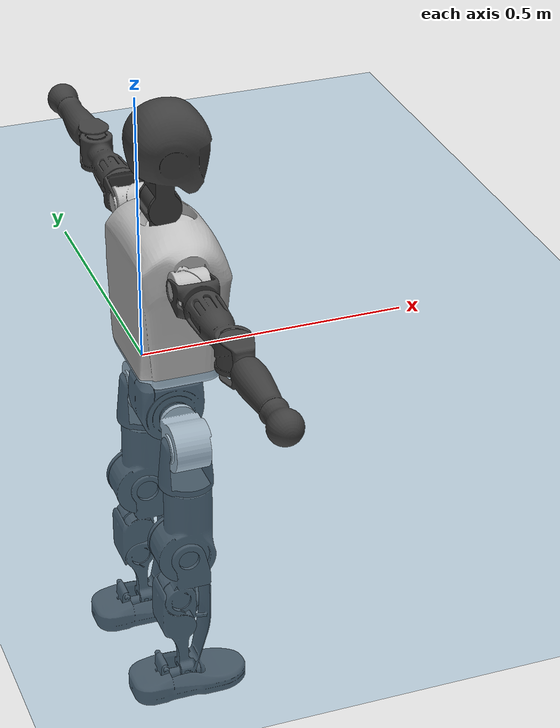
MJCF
<mujoco model="T1">
  <compiler angle="radian" assetdir="assets" balanceinertia="true" inertiafromgeom="false"/>

  <option timestep="0.005" density="1.2" viscosity="2e-05"/>

  <size nkey="1"/>

  <visual>
    <quality shadowsize="8192"/>
    <map shadowclip="0.5"/>
  </visual>

  <default>
    <default class="/">
      <joint armature="0.01" damping="0.01" frictionloss="0.1"/>
      <geom contype="0" conaffinity="0" group="1" solref="-1000 -80"/>
      <site size="0.01 0.005 0.005" group="5"/>
      <general forcelimited="true" biastype="affine" gainprm="25" biasprm="0 -25 -0.6"/>
      <default class="t1">
        <geom rgba="0.25 0.25 0.25 1"/>
        <default class="visual">
          <geom type="mesh" group="2"/>
        </default>
        <default class="collision">
          <geom group="3"/>
        </default>
        <default class="foot">
          <geom size="0.1115 0.05 0.015" type="box" condim="6" group="4" priority="1" solimp="0.015 1 0.015"/>
        </default>
        <default class="reward_collision_sphere">
          <geom group="5" rgba="1 0 0 1"/>
        </default>
      </default>
    </default>
  </default>

  <asset>
    <texture type="skybox" colorspace="auto" name="//unnamed_texture_0" builtin="gradient" rgb1="0.95 0.95 0.95" rgb2="0.95 0.95 0.95" width="100" height="600"/>
    <texture type="2d" colorspace="auto" name="texplane" builtin="checker" rgb1="0.345 0.575 0.748" rgb2="0.345 0.575 0.748" markrgb="1 1 1" width="512" height="512"/>
    <material name="MatPlane" class="/" texture="texplane" texuniform="true" texrepeat="2 2" specular="0.9"/>
    <mesh name="Trunk" class="/" file="Trunk.stl"/>
    <mesh name="H1" class="/" file="H1.stl"/>
    <mesh name="H2" class="/" file="H2.stl"/>
    <mesh name="AL1" class="/" file="AL1.stl"/>
    <mesh name="AL2" class="/" file="AL2.stl"/>
    <mesh name="AL3" class="/" file="AL3.stl"/>
    <mesh name="left_hand_link" class="/" file="left_hand_link.stl"/>
    <mesh name="AR1" class="/" file="AR1.stl"/>
    <mesh name="AR2" class="/" file="AR2.stl"/>
    <mesh name="AR3" class="/" file="AR3.stl"/>
    <mesh name="right_hand_link" class="/" file="right_hand_link.stl"/>
    <mesh name="Waist" class="/" file="Waist.stl"/>
    <mesh name="Hip_Pitch_Left" class="/" file="Hip_Pitch_Left.stl"/>
    <mesh name="Hip_Roll_Left" class="/" file="Hip_Roll_Left.stl"/>
    <mesh name="Hip_Yaw_Left" class="/" file="Hip_Yaw_Left.stl"/>
    <mesh name="Shank_Left" class="/" file="Shank_Left.stl"/>
    <mesh name="Ankle_Cross_Left" class="/" file="Ankle_Cross_Left.stl"/>
    <mesh name="left_foot_link" class="/" file="left_foot_link.stl"/>
    <mesh name="Hip_Pitch_Right" class="/" file="Hip_Pitch_Right.stl"/>
    <mesh name="Hip_Roll_Right" class="/" file="Hip_Roll_Right.stl"/>
    <mesh name="Hip_Yaw_Right" class="/" file="Hip_Yaw_Right.stl"/>
    <mesh name="Shank_Right" class="/" file="Shank_Right.stl"/>
    <mesh name="Ankle_Cross_Right" class="/" file="Ankle_Cross_Right.stl"/>
    <mesh name="right_foot_link" class="/" file="right_foot_link.stl"/>
  </asset>

  <worldbody>
    <geom name="floor" class="/" size="100 100 0.125" type="plane" group="0" material="MatPlane"/>
    <light name="toplight_shadow" class="/" pos="0 0 5" dir="0.0990148 0.0990148 -0.990148" type="directional" ambient="0.04 0.04 0.04" diffuse="0.55 0.55 0.55" specular="0.12 0.12 0.12"/>
    <light name="toplight_fill" class="/" pos="0 0 5" dir="0.0990148 0.0990148 -0.990148" type="directional" castshadow="false" ambient="0.04 0.04 0.04" diffuse="0.3 0.3 0.3" specular="0.08 0.08 0.08"/>
    <body name="trunk" childclass="t1" pos="-0.00169309 0.00167437 0.00081014" quat="1 -0.000112824 -9.80844e-06 0.000191171">
      <inertial pos="0.0385973 -0.00267973 0.105855" quat="0.999979 0.00639127 0.00116972 -0.000728394" mass="10.4269" diaginertia="0.0172064 0.134609 0.0553973"/>
      <joint name="//unnamed_joint_0" type="free" armature="0" damping="0" frictionloss="0"/>
      <geom name="//unnamed_geom_1" class="visual" rgba="0.76 0.76 0.76 1" mesh="Trunk"/>
      <geom name="//unnamed_geom_2" class="collision" size="0.0707679 0.0943573 0.141536" pos="0.0427708 0 0.119212" type="box"/>
      <geom name="//unnamed_geom_3" class="reward_collision_sphere" size="0.108511" pos="0.0427708 0 0.099343"/>
      <geom name="//unnamed_geom_4" class="reward_collision_sphere" size="0.0141536" pos="0.0427708 0.0955775 0"/>
      <geom name="//unnamed_geom_5" class="reward_collision_sphere" size="0.0141536" pos="0.0427708 -0.0955775 0"/>
      <geom name="//unnamed_geom_6" class="reward_collision_sphere" size="0.0141536" pos="0.0427708 0.120315 0.178817"/>
      <geom name="//unnamed_geom_7" class="reward_collision_sphere" size="0.0141536" pos="0.0427708 -0.120315 0.178817"/>
      <site name="imu" pos="-1.54946e-05 0.0147579 0.00323759" size="0.00943573"/>
      <camera name="track" pos="0 -2.24888 0" quat="0.707107 0.707107 0 0" mode="trackcom"/>
      <camera name="ego_camera" pos="0.0869672 0 0.417241" quat="-0.5 -0.5 0.5 0.5"/>
      <body name="H1" pos="0.0426598 -0.00273679 0.239023" quat="1 -0.000301418 -0.000201709 -0.000191007">
        <inertial pos="9.4735e-05 -0.00115831 0.05735" quat="0.767662 -0.00250384 -0.0206185 0.640518" mass="0.378419" diaginertia="4.72426e-05 0.000411348 0.000148849"/>
        <joint name="AAHead_yaw" pos="0 0 0" axis="0.0151787 -0.00255241 0.999882" range="-1.56673 1.62002" armature="0.00969939" damping="0.0141045" frictionloss="0.0974345"/>
        <geom name="//unnamed_geom_8" class="visual" mesh="H1"/>
        <body name="H2" pos="-0.00250589 -0.00266466 0.0594416" quat="0.999999 0.000966962 0.000241252 0.000118942">
          <inertial pos="0.00603533 0.00541244 0.0988154" quat="0.986815 0.108818 -0.0849884 -0.0844547" mass="0.540507" diaginertia="0.000385708 0.00374299 0.00170282"/>
          <joint name="Head_pitch" pos="0 0 0" axis="0.00638145 -0.999973 0.00351108" range="-1.27038 0.371878" armature="0.0105654" damping="0.000313729" frictionloss="0.0852581"/>
          <geom name="//unnamed_geom_9" class="visual" mesh="H2"/>
          <geom name="//unnamed_geom_10" class="collision" size="0.0754858" pos="0.00712846 0 0.109277"/>
          <geom name="//unnamed_geom_11" class="reward_collision_sphere" size="0.0849215" pos="0.0142569 0 0.099343"/>
        </body>
      </body>
      <body name="AL1" pos="0.0409304 0.119469 0.220188" quat="0.999999 0.00113667 2.45542e-05 0.000522297">
        <inertial pos="0.00130811 0.0527239 0.00412742" quat="0.489068 0.501719 -0.512059 0.496877" mass="0.412013" diaginertia="0.000232776 0.00211649 0.00025518"/>
        <joint name="Left_Shoulder_Pitch" pos="0 0 0" axis="0.0081421 0.999921 0.00953807" stiffness="0.00618915" range="-3.3149 1.18777" armature="0.0081744" damping="0" frictionloss="0.104674"/>
        <geom name="//unnamed_geom_12" class="visual" rgba="0.76 0.76 0.76 1" mesh="AL1"/>
        <body name="AL2" pos="-0.000430853 0.0544803 0.00189024" quat="0.999996 -0.000827135 0.00280697 0.000229565">
          <inertial pos="0.00420226 0.0478618 -0.000712069" quat="0.488089 0.511253 -0.488653 0.511476" mass="0.137251" diaginertia="7.30197e-05 0.000612674 0.000174173"/>
          <joint name="Left_Shoulder_Roll" pos="0 0 0" axis="-0.999682 0.0177452 0.0179091" stiffness="0.0238061" range="-1.63926 1.69509" armature="0.00855434" damping="0.030235" frictionloss="0.0798805"/>
          <geom name="//unnamed_geom_13" class="visual" mesh="AL2"/>
          <body name="AL3" pos="-9.92119e-05 0.0631925 -0.00170377" quat="0.999998 0.00159681 -0.00062105 -0.000749515">
            <inertial pos="-0.000376392 0.0981081 -0.00232937" quat="0.704726 0.709478 -0.00105421 0.00110354" mass="0.788938" diaginertia="0.00234038 0.022051 0.000628415"/>
            <joint name="Left_Elbow_Pitch" pos="0 0 0" axis="0.00854397 -0.999963 -0.000403655" stiffness="0.00924759" range="-2.37675 2.35672" armature="0.0076813" damping="0.0221012" frictionloss="0.0888099"/>
            <geom name="//unnamed_geom_14" class="visual" mesh="AL3"/>
            <geom name="//unnamed_geom_15" class="collision" size="0.0283072 0.0707679" pos="0 0.0562221 0" quat="0.707105 0.707108 0 0" type="cylinder"/>
            <geom name="//unnamed_geom_16" class="reward_collision_sphere" size="0.0339686"/>
            <body name="left_hand_link" pos="0.00130487 0.166741 0.00416812" quat="1 9.20674e-05 0.000149269 -3.76352e-05">
              <inertial pos="-0.000184871 0.122745 0.00214576" quat="0.701291 0.712856 -0.00494464 0.00169259" mass="0.278591" diaginertia="0.00153331 0.0142577 0.000215612"/>
              <joint name="Left_Elbow_Yaw" pos="0 0 0" axis="0.00160797 0.00171198 0.999997" range="-2.44121 0.00175751" armature="0.00830564" damping="0.0133932" frictionloss="0.0964348"/>
              <geom name="//unnamed_geom_17" class="visual" mesh="left_hand_link"/>
              <geom name="//unnamed_geom_18" class="collision" size="0.0283072 0.0825626" pos="0 0.146177 0" quat="0.707105 0.707108 0 0" type="cylinder"/>
              <geom name="//unnamed_geom_19" class="reward_collision_sphere" size="0.0471786"/>
              <geom name="//unnamed_geom_20" class="reward_collision_sphere" size="0.033025" pos="0 0.123689 0"/>
              <geom name="//unnamed_geom_21" class="reward_collision_sphere" size="0.033025" pos="0 0.241755 0"/>
            </body>
          </body>
        </body>
      </body>
      <body name="AR1" pos="0.0412447 -0.116515 0.216371" quat="1 0.000491814 0.000383437 0.00015008">
        <inertial pos="-0.000453535 -0.0474882 -0.00340547" quat="0.502558 0.497986 -0.504171 0.495234" mass="0.444834" diaginertia="0.00026404 0.00233216 0.00028776"/>
        <joint name="Right_Shoulder_Pitch" pos="0 0 0" axis="-0.00160841 -0.999981 -0.0058796" stiffness="0.00791797" range="-1.27255 3.31524" armature="0.00936711" damping="0.0173755" frictionloss="0.106141"/>
        <geom name="//unnamed_geom_22" class="visual" rgba="0.76 0.76 0.76 1" mesh="AR1"/>
        <body name="AR2" pos="-0.00308972 -0.0546401 0.00223412" quat="1 0.00025281 -9.91446e-05 0.00027015">
          <inertial pos="0.00227267 -0.0430088 0.00406804" quat="0.51274 0.489877 -0.509378 0.487496" mass="0.140026" diaginertia="7.64596e-05 0.00067044 0.000181341"/>
          <joint name="Right_Shoulder_Roll" pos="0 0 0" axis="-0.999941 -0.0107981 0.000657133" range="-1.784 1.51406" armature="0.00907262" damping="0.0180523" frictionloss="0.0917261"/>
          <geom name="//unnamed_geom_23" class="visual" mesh="AR2"/>
          <body name="AR3" pos="-0.00103622 -0.069692 -0.000620597" quat="1 -4.97983e-05 0.000280519 0.000946714">
            <inertial pos="0.00190658 -0.0966873 -0.00209721" quat="0.709013 0.705187 0.000772552 -0.0033489" mass="0.89456" diaginertia="0.00245638 0.0233914 0.000621879"/>
            <joint name="Right_Elbow_Pitch" pos="0 0 0" axis="0.000126208 0.999951 -0.00989096" range="-2.25549 2.27959" armature="0.00773285" damping="0.00637707" frictionloss="0.109702"/>
            <geom name="//unnamed_geom_24" class="visual" mesh="AR3"/>
            <geom name="//unnamed_geom_25" class="collision" size="0.0283072 0.0707679" pos="0 -0.0562221 0" quat="0.707105 0.707108 0 0" type="cylinder"/>
            <geom name="//unnamed_geom_26" class="reward_collision_sphere" size="0.0339686"/>
            <body name="right_hand_link" pos="-0.000253647 -0.16303 -0.00310055" quat="1 -0.000107863 -5.54334e-05 -2.46315e-05">
              <inertial pos="-0.00212826 -0.124476 0.00539339" quat="0.712651 0.701225 0.0193595 -0.0060819" mass="0.25301" diaginertia="0.00154974 0.0146008 0.000207122"/>
              <joint name="Right_Elbow_Yaw" pos="0 0 0" axis="-3.16529e-05 -1.90992e-05 1" stiffness="0.0168953" range="0.0677765 2.35037" armature="0.0084283" damping="0" frictionloss="0.105759"/>
              <geom name="//unnamed_geom_27" class="visual" mesh="right_hand_link"/>
              <geom name="//unnamed_geom_28" class="collision" size="0.0283072 0.0825626" pos="0 -0.146177 0" quat="0.707105 0.707108 0 0" type="cylinder"/>
              <geom name="//unnamed_geom_29" class="reward_collision_sphere" size="0.0471786"/>
              <geom name="//unnamed_geom_30" class="reward_collision_sphere" size="0.033025" pos="0 -0.123689 0"/>
              <geom name="//unnamed_geom_31" class="reward_collision_sphere" size="0.033025" pos="0 -0.241755 0"/>
            </body>
          </body>
        </body>
      </body>
      <body name="Waist" pos="0.0460608 0.000851591 -0.112145" quat="1 0.000477749 2.82099e-05 -0.0006319">
        <inertial pos="0.00508726 -0.000541322 0.00824049" quat="0.983506 0.00383415 -0.180833 0.000469424" mass="2.1782" diaginertia="0.0010142 0.0093685 0.00465903"/>
        <joint name="Waist" pos="0 0 0" axis="0.0130134 -0.000622454 0.999915" stiffness="0.0289727" range="-1.57133 1.54129" armature="0.0102475" damping="0" frictionloss="0.104847"/>
        <geom name="//unnamed_geom_32" class="visual" mesh="Waist"/>
        <body name="Hip_Pitch_Left" pos="-0.00214871 0.115924 -0.0021067" quat="0.999999 0.000687373 0.00039194 -0.000854014">
          <inertial pos="-0.00373273 -0.00708067 -0.0150901" quat="0.971312 0.23587 0.0292594 0.00790887" mass="0.859067" diaginertia="0.000339346 0.00263128 0.00124939"/>
          <joint name="Left_Hip_Pitch" pos="0 0 0" axis="-0.00465389 0.999956 -0.0081628" range="-1.78102 1.50679" armature="0.00857307" damping="0.0191144" frictionloss="0.0828274"/>
          <geom name="//unnamed_geom_33" class="visual" rgba="0.76 0.76 0.76 1" mesh="Hip_Pitch_Left"/>
          <body name="Hip_Roll_Left" pos="-0.0036479 0.00251507 -0.0232484" quat="0.999999 -0.000122742 0.00130689 0.000403169">
            <inertial pos="0.00103317 -0.00188583 -0.0533554" quat="0.706325 -0.00619279 -0.00948161 0.707797" mass="0.356476" diaginertia="0.000324509 0.0029756 0.000536269"/>
            <joint name="Left_Hip_Roll" pos="0 0 0" axis="-0.999973 -0.00724144 -0.000827835" range="-1.56675 0.229088" armature="0.00983138" damping="0.0179732" frictionloss="0.0977079"/>
            <geom name="//unnamed_geom_34" class="visual" mesh="Hip_Roll_Left"/>
            <geom name="//unnamed_geom_35" class="reward_collision_sphere" size="0.0518965"/>
            <body name="Hip_Yaw_Left" pos="-0.00120184 -0.00148401 -0.0829262" quat="1 -1.00663e-05 3.49912e-05 3.48044e-06">
              <inertial pos="-0.00490929 3.61124e-05 -0.0907879" quat="0.689224 -0.0366612 -0.0148431 0.723468" mass="1.83133" diaginertia="0.00469344 0.0462172 0.0024128"/>
              <joint name="Left_Hip_Yaw" pos="0 0 0" axis="0.0155544 0.00626129 -0.999859" range="-0.986079 1.03279" armature="0.00858422" damping="0.00897332" frictionloss="0.0940915"/>
              <geom name="//unnamed_geom_36" class="visual" mesh="Hip_Yaw_Left"/>
              <geom name="//unnamed_geom_37" class="collision" size="0.0471786 0.0754858" type="cylinder"/>
              <body name="Shank_Left" pos="-0.0105217 -0.00315189 -0.130809" quat="0.999999 -0.000349785 0.000715792 0.000678064">
                <inertial pos="-0.00157762 0.00468155 -0.12332" quat="0.998053 0.00781283 -0.0175911 0.0593227" mass="1.43443" diaginertia="0.00590906 0.062159 0.00166803"/>
                <joint name="Left_Knee_Pitch" pos="0 0 0" axis="0.00190584 0.999991 0.00371611" range="0.0159221 2.34137" armature="0.0105732" damping="0.0125297" frictionloss="0.0671878"/>
                <geom name="//unnamed_geom_38" class="visual" mesh="Shank_Left"/>
                <geom name="//unnamed_geom_39" class="collision" size="0.0471786 0.0707679" pos="0 0 -0.119212" type="cylinder"/>
                <geom name="//unnamed_geom_40" class="reward_collision_sphere" size="0.0613322"/>
                <body name="Ankle_Cross_Left" pos="0.00248724 0.00250643 -0.278061" quat="1 6.13119e-06 0.000220239 0.000158711">
                  <inertial pos="-0.00359608 -0.00108814 -0.00750537" quat="0.441146 0.554319 0.542665 0.45126" mass="0.0659394" diaginertia="5.59706e-06 5.21553e-05 1.14149e-05"/>
                  <joint name="Left_Ankle_Pitch" pos="0 0 0" axis="0.0206232 0.999748 0.00883656" stiffness="0.0219158" range="-0.911615 0.298001" armature="0.00963925" damping="0.0106325" frictionloss="0.0885794"/>
                  <geom name="//unnamed_geom_41" class="visual" mesh="Ankle_Cross_Left"/>
                  <body name="left_foot_link" pos="-0.00206122 0.000549156 -0.0128651" quat="0.999997 0.000573091 0.00175034 0.001387">
                    <inertial pos="-0.00369797 -1.95161e-05 -0.0107992" quat="-0.00904124 0.621234 -0.00134516 0.783572" mass="0.572716" diaginertia="0.000499454 0.00434476 0.00218625"/>
                    <joint name="Left_Ankle_Roll" pos="0 0 0" axis="-0.999857 0.0168072 0.00162881" range="-0.421684 0.425985" armature="0.0093217" damping="0.010497" frictionloss="0.103506"/>
                    <geom name="//unnamed_geom_42" class="visual" mesh="left_foot_link"/>
                    <geom name="left_foot" class="foot" size="0.097595 0.0444813 0.017093" pos="0.00712846 0 -0.0149014"/>
                    <geom name="//unnamed_geom_44" class="reward_collision_sphere" size="0.0490658" pos="0.00712846 0 -0.0149014"/>
                    <geom name="//unnamed_geom_45" class="reward_collision_sphere" size="0.0283072" pos="0.0677204 -0.0258622 -0.0149014"/>
                    <geom name="//unnamed_geom_46" class="reward_collision_sphere" size="0.0283072" pos="-0.0498992 -0.0258622 -0.0149014"/>
                    <site name="left_foot" class="foot" pos="0.00712846 0 -0.0149014" size="0.00943573"/>
                  </body>
                </body>
              </body>
            </body>
          </body>
        </body>
        <body name="Hip_Pitch_Right" pos="0.00129885 -0.117207 -0.00188334" quat="1 0.00011902 4.30837e-05 4.76184e-05">
          <inertial pos="-0.000140325 0.00605915 -0.0197236" quat="0.972059 -0.234211 0.0150187 -0.00465268" mass="0.831669" diaginertia="0.000339749 0.00263036 0.00116742"/>
          <joint name="Right_Hip_Pitch" pos="0 0 0" axis="-0.0153893 -0.999882 2.46617e-05" stiffness="9.24681e-05" range="-1.56147 1.76258" armature="0.00873858" damping="0.0106147" frictionloss="0.0903886"/>
          <geom name="//unnamed_geom_47" class="visual" rgba="0.76 0.76 0.76 1" mesh="Hip_Pitch_Right"/>
          <body name="Hip_Roll_Right" pos="-0.00260802 -0.00266209 -0.0209439" quat="1 8.56221e-05 3.19975e-05 -0.000163977">
            <inertial pos="0.00344994 -0.000905601 -0.0518404" quat="0.706272 -0.0102441 -0.00416088 0.707855" mass="0.310527" diaginertia="0.000325345 0.00270923 0.000483324"/>
            <joint name="Right_Hip_Roll" pos="0 0 0" axis="-0.999991 -0.00335541 -0.00258974" stiffness="0.000883583" range="-0.207401 1.5156" armature="0.00985454" damping="0.0102586" frictionloss="0.0901196"/>
            <geom name="//unnamed_geom_48" class="visual" mesh="Hip_Roll_Right"/>
            <geom name="//unnamed_geom_49" class="reward_collision_sphere" size="0.0518965"/>
            <body name="Hip_Yaw_Right" pos="-0.000179741 -0.00238151 -0.0804258" quat="1 -0.000181082 -0.000398091 -0.000492041">
              <inertial pos="-0.00484436 0.00257296 -0.0928212" quat="0.720961 -0.0233814 -0.035736 0.691658" mass="1.72532" diaginertia="0.00463501 0.0428077 0.00247863"/>
              <joint name="Right_Hip_Yaw" pos="0 0 0" axis="-0.00243902 -0.000734391 -0.999997" range="-1.06233 0.993953" armature="0.011514" damping="0.00166619" frictionloss="0.0825609"/>
              <geom name="//unnamed_geom_50" class="visual" mesh="Hip_Yaw_Right"/>
              <geom name="//unnamed_geom_51" class="collision" size="0.0471786 0.0754858" type="cylinder"/>
              <body name="Shank_Right" pos="-0.0135843 -0.00254082 -0.13486" quat="1 -6.53688e-05 -0.000295937 0.00028417">
                <inertial pos="-0.00884187 -0.00577974 -0.119839" quat="0.999381 -0.00360219 -0.0229025 -0.0264652" mass="1.41848" diaginertia="0.00567075 0.0577958 0.00178045"/>
                <joint name="Right_Knee_Pitch" pos="0 0 0" axis="0.00450796 -0.999767 -0.0211185" range="-2.34598 -0.0100877" armature="0.0105606" damping="0.010281" frictionloss="0.100055"/>
                <geom name="//unnamed_geom_52" class="visual" mesh="Shank_Right"/>
                <geom name="//unnamed_geom_53" class="collision" size="0.0471786 0.0707679" pos="0 0 -0.119212" type="cylinder"/>
                <geom name="//unnamed_geom_54" class="reward_collision_sphere" size="0.0613322"/>
                <body name="Ankle_Cross_Right" pos="0.000567658 0.00200995 -0.277712" quat="0.999999 -0.000482719 -0.000497352 -0.00101987">
                  <inertial pos="-0.000625005 0.000594904 -0.00710124" quat="0.446957 0.550638 0.550621 0.440278" mass="0.0625042" diaginertia="5.28495e-06 4.59104e-05 1.09428e-05"/>
                  <joint name="Right_Ankle_Pitch" pos="0 0 0" axis="0.0209369 -0.999618 -0.0180536" range="-0.3933 0.88488" armature="0.0105789" damping="0.0144368" frictionloss="0.105157"/>
                  <geom name="//unnamed_geom_55" class="visual" mesh="Ankle_Cross_Right"/>
                  <body name="right_foot_link" pos="-0.00158436 0.0015613 -0.0132979" quat="1 -0.000378466 -4.60621e-05 -7.91941e-05">
                    <inertial pos="-0.00456502 0.00019956 -0.00918505" quat="0.00637738 0.62098 0.00044629 0.7838" mass="0.589739" diaginertia="0.000465369 0.00423744 0.00209702"/>
                    <joint name="Right_Ankle_Roll" pos="0 0 0" axis="-0.999955 0.00848839 0.00415" range="-0.431107 0.40109" armature="0.0103974" damping="0.00809791" frictionloss="0.111617"/>
                    <geom name="//unnamed_geom_56" class="visual" mesh="right_foot_link"/>
                    <geom name="right_foot" class="foot" size="0.100189 0.0430699 0.014168" pos="0.00712846 0 -0.0149014"/>
                    <geom name="//unnamed_geom_58" class="reward_collision_sphere" size="0.0377429"/>
                    <geom name="//unnamed_geom_59" class="reward_collision_sphere" size="0.0283072" pos="0.00712846 0 -0.0149014"/>
                    <geom name="//unnamed_geom_60" class="reward_collision_sphere" size="0.0283072" pos="0.0677204 0.0258622 -0.0149014"/>
                    <geom name="//unnamed_geom_61" class="reward_collision_sphere" size="0.0283072" pos="-0.0498992 0.0258622 -0.0149014"/>
                    <site name="right_foot" class="foot" pos="0.00712846 0 -0.0149014" size="0.00943573"/>
                  </body>
                </body>
              </body>
            </body>
          </body>
        </body>
      </body>
    </body>
  </worldbody>

  <contact>
    <pair class="/" geom1="floor" geom2="left_foot" name="//unnamed_contact_0"/>
    <pair class="/" geom1="floor" geom2="right_foot" name="//unnamed_contact_1"/>
  </contact>

  <actuator>
    <general name="AAHead_yaw" class="/" joint="AAHead_yaw" forcerange="-7.30475 7.30475" gainprm="22.0137" biasprm="0 -22.0137 -0.599325"/>
    <general name="Head_pitch" class="/" joint="Head_pitch" forcerange="-7.09288 7.09288" gainprm="22.0137" biasprm="0 -22.0137 -0.599325"/>
    <general name="Left_Shoulder_Pitch" class="/" joint="Left_Shoulder_Pitch" forcerange="-16.9368 16.9368" gainprm="22.0137" biasprm="0 -22.0137 -0.599325"/>
    <general name="Left_Shoulder_Roll" class="/" joint="Left_Shoulder_Roll" forcerange="-17.9355 17.9355" gainprm="22.0137" biasprm="0 -22.0137 -0.599325"/>
    <general name="Left_Elbow_Pitch" class="/" joint="Left_Elbow_Pitch" forcerange="-16.0965 16.0965" gainprm="22.0137" biasprm="0 -22.0137 -0.599325"/>
    <general name="Left_Elbow_Yaw" class="/" joint="Left_Elbow_Yaw" forcerange="-14.0081 14.0081" gainprm="22.0137" biasprm="0 -22.0137 -0.599325"/>
    <general name="Right_Shoulder_Pitch" class="/" joint="Right_Shoulder_Pitch" forcerange="-17.2567 17.2567" gainprm="22.0137" biasprm="0 -22.0137 -0.599325"/>
    <general name="Right_Shoulder_Roll" class="/" joint="Right_Shoulder_Roll" forcerange="-16.0521 16.0521" gainprm="22.0137" biasprm="0 -22.0137 -0.599325"/>
    <general name="Right_Elbow_Pitch" class="/" joint="Right_Elbow_Pitch" forcerange="-17.1053 17.1053" gainprm="22.0137" biasprm="0 -22.0137 -0.599325"/>
    <general name="Right_Elbow_Yaw" class="/" joint="Right_Elbow_Yaw" forcerange="-17.6248 17.6248" gainprm="22.0137" biasprm="0 -22.0137 -0.599325"/>
    <general name="Waist" class="/" joint="Waist" forcerange="-28.3184 28.3184" gainprm="22.0137" biasprm="0 -22.0137 -0.599325"/>
    <general name="Left_Hip_Pitch" class="/" joint="Left_Hip_Pitch" forcerange="-43.0587 43.0587" gainprm="22.0137" biasprm="0 -22.0137 -0.599325"/>
    <general name="Left_Hip_Roll" class="/" joint="Left_Hip_Roll" forcerange="-25.9595 25.9595" gainprm="22.0137" biasprm="0 -22.0137 -0.599325"/>
    <general name="Left_Hip_Yaw" class="/" joint="Left_Hip_Yaw" forcerange="-30.7474 30.7474" gainprm="22.0137" biasprm="0 -22.0137 -0.599325"/>
    <general name="Left_Knee_Pitch" class="/" joint="Left_Knee_Pitch" forcerange="-55.332 55.332" gainprm="22.0137" biasprm="0 -22.0137 -0.599325"/>
    <general name="Left_Ankle_Pitch" class="/" joint="Left_Ankle_Pitch" forcerange="-20.6241 20.6241" gainprm="22.0137" biasprm="0 -22.0137 -0.599325"/>
    <general name="Left_Ankle_Roll" class="/" joint="Left_Ankle_Roll" forcerange="-14.292 14.292" gainprm="22.0137" biasprm="0 -22.0137 -0.599325"/>
    <general name="Right_Hip_Pitch" class="/" joint="Right_Hip_Pitch" forcerange="-40.5544 40.5544" gainprm="22.0137" biasprm="0 -22.0137 -0.599325"/>
    <general name="Right_Hip_Roll" class="/" joint="Right_Hip_Roll" forcerange="-27.7667 27.7667" gainprm="22.0137" biasprm="0 -22.0137 -0.599325"/>
    <general name="Right_Hip_Yaw" class="/" joint="Right_Hip_Yaw" forcerange="-29.1553 29.1553" gainprm="22.0137" biasprm="0 -22.0137 -0.599325"/>
    <general name="Right_Knee_Pitch" class="/" joint="Right_Knee_Pitch" forcerange="-54.1509 54.1509" gainprm="22.0137" biasprm="0 -22.0137 -0.599325"/>
    <general name="Right_Ankle_Pitch" class="/" joint="Right_Ankle_Pitch" forcerange="-19.8354 19.8354" gainprm="22.0137" biasprm="0 -22.0137 -0.599325"/>
    <general name="Right_Ankle_Roll" class="/" joint="Right_Ankle_Roll" forcerange="-14.317 14.317" gainprm="22.0137" biasprm="0 -22.0137 -0.599325"/>
  </actuator>

  <sensor>
    <gyro site="imu" name="imu_angular_velocity"/>
    <velocimeter site="imu" name="imu_linear_velocity"/>
    <framelinvel objtype="site" objname="left_foot" name="left_foot_global_linear_velocity"/>
    <framelinvel objtype="site" objname="right_foot" name="right_foot_global_linear_velocity"/>
  </sensor>

  <keyframe>
    <key name="home" qpos="0 0 0.6385 1 0 0 0 0 0 0 1.4 0 -0.4 0 -1.4 0 0.4 0 -0.4 0 0 0.8 -0.4 0 0.4 0 0 -0.8 0.4 0"/>
  </keyframe>
</mujoco>
